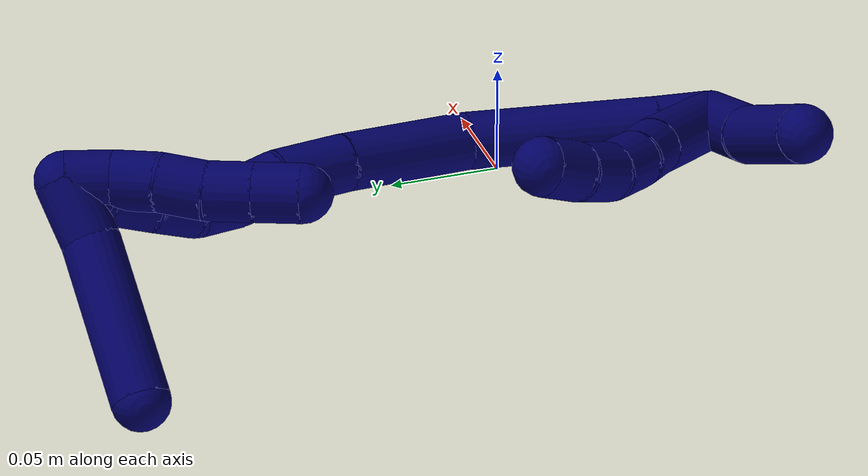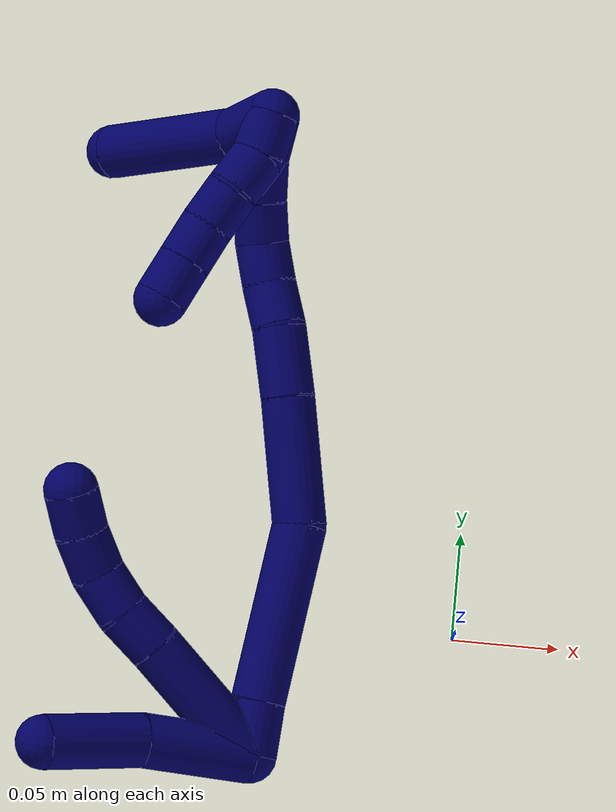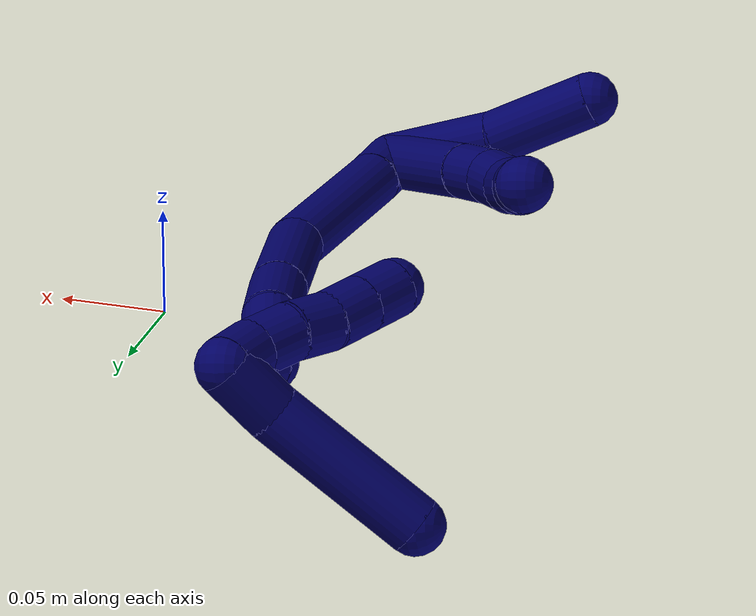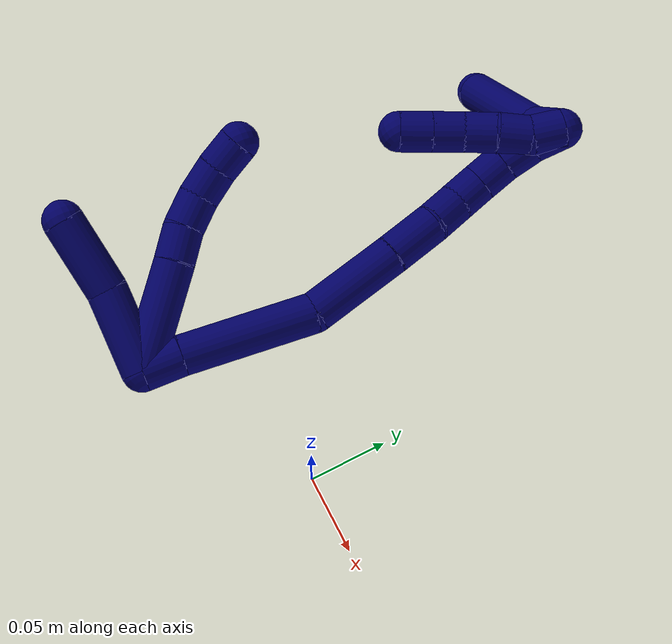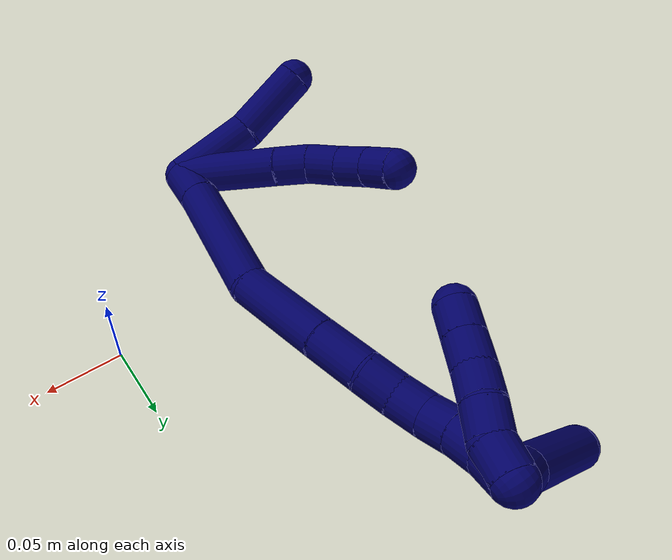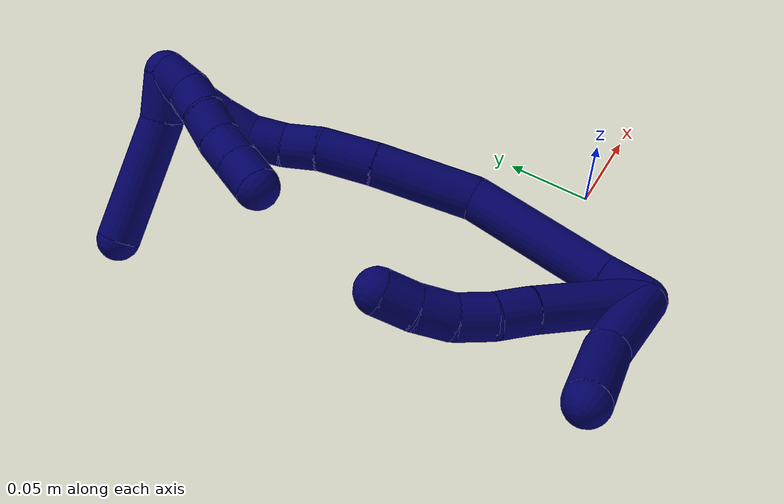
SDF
<sdf version="1.7">
 <world name="default">
  <model name="7">
   <static>0</static>
   <link name="7">
    <collision name="collision-cylinder-e_1_2_8">
     <pose>0.014431 0.017265 0.024663 -0.610749 0.446994 -0.143058</pose>
     <geometry><cylinder><radius>0.0125</radius><length>0.066772</length></cylinder></geometry>
     <surface>
      <friction><ode><mu>1.16</mu><mu2>1.16</mu2><slip1>0</slip1><slip2>0</slip2></ode></friction>
      <contact><ode><kp>1e+06</kp><kd>1</kd><max_vel>0</max_vel><min_depth>0.001</min_depth></ode></contact>
     </surface>
    </collision>
    <visual name="visual-cylinder-e_1_2_8">
     <pose>0.014431 0.017265 0.024663 -0.610749 0.446994 -0.143058</pose>
     <geometry><cylinder><radius>0.0125</radius><length>0.066772</length></cylinder></geometry>
     <material><ambient>0.003922 0 0.403922 1</ambient></material>
    </visual>
    <collision name="collision-cylinder-e_2_8_9">
     <pose>0.032855 0.040107 0.057547 -0.596103 0.382129 -0.118701</pose>
     <geometry><cylinder><radius>0.0125</radius><length>0.021412</length></cylinder></geometry>
     <surface>
      <friction><ode><mu>1.16</mu><mu2>1.16</mu2><slip1>0</slip1><slip2>0</slip2></ode></friction>
      <contact><ode><kp>1e+06</kp><kd>1</kd><max_vel>0</max_vel><min_depth>0.001</min_depth></ode></contact>
     </surface>
    </collision>
    <visual name="visual-cylinder-e_2_8_9">
     <pose>0.032855 0.040107 0.057547 -0.596103 0.382129 -0.118701</pose>
     <geometry><cylinder><radius>0.0125</radius><length>0.021412</length></cylinder></geometry>
     <material><ambient>0.003922 0 0.403922 1</ambient></material>
    </visual>
    <collision name="collision-cylinder-e_3_9_10">
     <pose>0.041117 0.052444 0.072464 -0.790086 0.421823 -0.178067</pose>
     <geometry><cylinder><radius>0.0125</radius><length>0.020857</length></cylinder></geometry>
     <surface>
      <friction><ode><mu>1.16</mu><mu2>1.16</mu2><slip1>0</slip1><slip2>0</slip2></ode></friction>
      <contact><ode><kp>1e+06</kp><kd>1</kd><max_vel>0</max_vel><min_depth>0.001</min_depth></ode></contact>
     </surface>
    </collision>
    <visual name="visual-cylinder-e_3_9_10">
     <pose>0.041117 0.052444 0.072464 -0.790086 0.421823 -0.178067</pose>
     <geometry><cylinder><radius>0.0125</radius><length>0.020857</length></cylinder></geometry>
     <material><ambient>0.003922 0 0.403922 1</ambient></material>
    </visual>
    <collision name="collision-cylinder-e_4_10_11">
     <pose>0.051883 0.06558 0.084175 -0.904351 0.675211 -0.337785</pose>
     <geometry><cylinder><radius>0.0125</radius><length>0.020786</length></cylinder></geometry>
     <surface>
      <friction><ode><mu>1.16</mu><mu2>1.16</mu2><slip1>0</slip1><slip2>0</slip2></ode></friction>
      <contact><ode><kp>1e+06</kp><kd>1</kd><max_vel>0</max_vel><min_depth>0.001</min_depth></ode></contact>
     </surface>
    </collision>
    <visual name="visual-cylinder-e_4_10_11">
     <pose>0.051883 0.06558 0.084175 -0.904351 0.675211 -0.337785</pose>
     <geometry><cylinder><radius>0.0125</radius><length>0.020786</length></cylinder></geometry>
     <material><ambient>0.003922 0 0.403922 1</ambient></material>
    </visual>
    <collision name="collision-cylinder-e_5_11_6">
     <pose>0.065474 0.078148 0.092804 -1.04248 0.780136 -0.463666</pose>
     <geometry><cylinder><radius>0.0125</radius><length>0.020173</length></cylinder></geometry>
     <surface>
      <friction><ode><mu>1.16</mu><mu2>1.16</mu2><slip1>0</slip1><slip2>0</slip2></ode></friction>
      <contact><ode><kp>1e+06</kp><kd>1</kd><max_vel>0</max_vel><min_depth>0.001</min_depth></ode></contact>
     </surface>
    </collision>
    <visual name="visual-cylinder-e_5_11_6">
     <pose>0.065474 0.078148 0.092804 -1.04248 0.780136 -0.463666</pose>
     <geometry><cylinder><radius>0.0125</radius><length>0.020173</length></cylinder></geometry>
     <material><ambient>0.003922 0 0.403922 1</ambient></material>
    </visual>
    <collision name="collision-cylinder-e_1_2_12">
     <pose>0.005147 -0.001965 0.025268 0.077623 0.200346 0.007806</pose>
     <geometry><cylinder><radius>0.0125</radius><length>0.051724</length></cylinder></geometry>
     <surface>
      <friction><ode><mu>1.16</mu><mu2>1.16</mu2><slip1>0</slip1><slip2>0</slip2></ode></friction>
      <contact><ode><kp>1e+06</kp><kd>1</kd><max_vel>0</max_vel><min_depth>0.001</min_depth></ode></contact>
     </surface>
    </collision>
    <visual name="visual-cylinder-e_1_2_12">
     <pose>0.005147 -0.001965 0.025268 0.077623 0.200346 0.007806</pose>
     <geometry><cylinder><radius>0.0125</radius><length>0.051724</length></cylinder></geometry>
     <material><ambient>0.003922 0 0.403922 1</ambient></material>
    </visual>
    <collision name="collision-cylinder-e_2_12_5">
     <pose>0.015774 -0.010408 0.073134 0.279133 0.22906 0.032317</pose>
     <geometry><cylinder><radius>0.0125</radius><length>0.048276</length></cylinder></geometry>
     <surface>
      <friction><ode><mu>1.16</mu><mu2>1.16</mu2><slip1>0</slip1><slip2>0</slip2></ode></friction>
      <contact><ode><kp>1e+06</kp><kd>1</kd><max_vel>0</max_vel><min_depth>0.001</min_depth></ode></contact>
     </surface>
    </collision>
    <visual name="visual-cylinder-e_2_12_5">
     <pose>0.015774 -0.010408 0.073134 0.279133 0.22906 0.032317</pose>
     <geometry><cylinder><radius>0.0125</radius><length>0.048276</length></cylinder></geometry>
     <material><ambient>0.003922 0 0.403922 1</ambient></material>
    </visual>
    <collision name="collision-cylinder-e_1_2_13">
     <pose>0.00555 0.011095 -0.000655 -1.62976 0.463133 -0.490194</pose>
     <geometry><cylinder><radius>0.0125</radius><length>0.024846</length></cylinder></geometry>
     <surface>
      <friction><ode><mu>1.16</mu><mu2>1.16</mu2><slip1>0</slip1><slip2>0</slip2></ode></friction>
      <contact><ode><kp>1e+06</kp><kd>1</kd><max_vel>0</max_vel><min_depth>0.001</min_depth></ode></contact>
     </surface>
    </collision>
    <visual name="visual-cylinder-e_1_2_13">
     <pose>0.00555 0.011095 -0.000655 -1.62976 0.463133 -0.490194</pose>
     <geometry><cylinder><radius>0.0125</radius><length>0.024846</length></cylinder></geometry>
     <material><ambient>0.003922 0 0.403922 1</ambient></material>
    </visual>
    <collision name="collision-cylinder-e_2_13_14">
     <pose>0.029412 0.059089 -0.006266 -1.70431 0.457115 -0.519878</pose>
     <geometry><cylinder><radius>0.0125</radius><length>0.082981</length></cylinder></geometry>
     <surface>
      <friction><ode><mu>1.16</mu><mu2>1.16</mu2><slip1>0</slip1><slip2>0</slip2></ode></friction>
      <contact><ode><kp>1e+06</kp><kd>1</kd><max_vel>0</max_vel><min_depth>0.001</min_depth></ode></contact>
     </surface>
    </collision>
    <visual name="visual-cylinder-e_2_13_14">
     <pose>0.029412 0.059089 -0.006266 -1.70431 0.457115 -0.519878</pose>
     <geometry><cylinder><radius>0.0125</radius><length>0.082981</length></cylinder></geometry>
     <material><ambient>0.003922 0 0.403922 1</ambient></material>
    </visual>
    <collision name="collision-cylinder-e_3_14_15">
     <pose>0.061432 0.121244 -0.005207 -1.33699 0.485791 -0.386524</pose>
     <geometry><cylinder><radius>0.0125</radius><length>0.058716</length></cylinder></geometry>
     <surface>
      <friction><ode><mu>1.16</mu><mu2>1.16</mu2><slip1>0</slip1><slip2>0</slip2></ode></friction>
      <contact><ode><kp>1e+06</kp><kd>1</kd><max_vel>0</max_vel><min_depth>0.001</min_depth></ode></contact>
     </surface>
    </collision>
    <visual name="visual-cylinder-e_3_14_15">
     <pose>0.061432 0.121244 -0.005207 -1.33699 0.485791 -0.386524</pose>
     <geometry><cylinder><radius>0.0125</radius><length>0.058716</length></cylinder></geometry>
     <material><ambient>0.003922 0 0.403922 1</ambient></material>
    </visual>
    <collision name="collision-cylinder-e_4_15_16">
     <pose>0.081954 0.160703 0.004581 -1.31115 0.434141 -0.336019</pose>
     <geometry><cylinder><radius>0.0125</radius><length>0.0324</length></cylinder></geometry>
     <surface>
      <friction><ode><mu>1.16</mu><mu2>1.16</mu2><slip1>0</slip1><slip2>0</slip2></ode></friction>
      <contact><ode><kp>1e+06</kp><kd>1</kd><max_vel>0</max_vel><min_depth>0.001</min_depth></ode></contact>
     </surface>
    </collision>
    <visual name="visual-cylinder-e_4_15_16">
     <pose>0.081954 0.160703 0.004581 -1.31115 0.434141 -0.336019</pose>
     <geometry><cylinder><radius>0.0125</radius><length>0.0324</length></cylinder></geometry>
     <material><ambient>0.003922 0 0.403922 1</ambient></material>
    </visual>
    <collision name="collision-cylinder-e_5_16_17">
     <pose>0.091479 0.184495 0.011492 -1.25442 0.262573 -0.190846</pose>
     <geometry><cylinder><radius>0.0125</radius><length>0.020891</length></cylinder></geometry>
     <surface>
      <friction><ode><mu>1.16</mu><mu2>1.16</mu2><slip1>0</slip1><slip2>0</slip2></ode></friction>
      <contact><ode><kp>1e+06</kp><kd>1</kd><max_vel>0</max_vel><min_depth>0.001</min_depth></ode></contact>
     </surface>
    </collision>
    <visual name="visual-cylinder-e_5_16_17">
     <pose>0.091479 0.184495 0.011492 -1.25442 0.262573 -0.190846</pose>
     <geometry><cylinder><radius>0.0125</radius><length>0.020891</length></cylinder></geometry>
     <material><ambient>0.003922 0 0.403922 1</ambient></material>
    </visual>
    <collision name="collision-cylinder-e_6_17_18">
     <pose>0.098509 0.20268 0.017436 -1.25548 0.445448 -0.325784</pose>
     <geometry><cylinder><radius>0.0125</radius><length>0.020044</length></cylinder></geometry>
     <surface>
      <friction><ode><mu>1.16</mu><mu2>1.16</mu2><slip1>0</slip1><slip2>0</slip2></ode></friction>
      <contact><ode><kp>1e+06</kp><kd>1</kd><max_vel>0</max_vel><min_depth>0.001</min_depth></ode></contact>
     </surface>
    </collision>
    <visual name="visual-cylinder-e_6_17_18">
     <pose>0.098509 0.20268 0.017436 -1.25548 0.445448 -0.325784</pose>
     <geometry><cylinder><radius>0.0125</radius><length>0.020044</length></cylinder></geometry>
     <material><ambient>0.003922 0 0.403922 1</ambient></material>
    </visual>
    <collision name="collision-cylinder-e_7_18_19">
     <pose>0.109926 0.21811 0.022237 -1.28643 0.784099 -0.601036</pose>
     <geometry><cylinder><radius>0.0125</radius><length>0.020105</length></cylinder></geometry>
     <surface>
      <friction><ode><mu>1.16</mu><mu2>1.16</mu2><slip1>0</slip1><slip2>0</slip2></ode></friction>
      <contact><ode><kp>1e+06</kp><kd>1</kd><max_vel>0</max_vel><min_depth>0.001</min_depth></ode></contact>
     </surface>
    </collision>
    <visual name="visual-cylinder-e_7_18_19">
     <pose>0.109926 0.21811 0.022237 -1.28643 0.784099 -0.601036</pose>
     <geometry><cylinder><radius>0.0125</radius><length>0.020105</length></cylinder></geometry>
     <material><ambient>0.003922 0 0.403922 1</ambient></material>
    </visual>
    <collision name="collision-cylinder-e_8_19_20">
     <pose>0.124103 0.231949 0.025158 -1.43969 0.786127 -0.697396</pose>
     <geometry><cylinder><radius>0.0125</radius><length>0.020006</length></cylinder></geometry>
     <surface>
      <friction><ode><mu>1.16</mu><mu2>1.16</mu2><slip1>0</slip1><slip2>0</slip2></ode></friction>
      <contact><ode><kp>1e+06</kp><kd>1</kd><max_vel>0</max_vel><min_depth>0.001</min_depth></ode></contact>
     </surface>
    </collision>
    <visual name="visual-cylinder-e_8_19_20">
     <pose>0.124103 0.231949 0.025158 -1.43969 0.786127 -0.697396</pose>
     <geometry><cylinder><radius>0.0125</radius><length>0.020006</length></cylinder></geometry>
     <material><ambient>0.003922 0 0.403922 1</ambient></material>
    </visual>
    <collision name="collision-cylinder-e_9_20_1">
     <pose>0.138896 0.245256 0.025134 -1.72017 0.880493 -1.00151</pose>
     <geometry><cylinder><radius>0.0125</radius><length>0.02001</length></cylinder></geometry>
     <surface>
      <friction><ode><mu>1.16</mu><mu2>1.16</mu2><slip1>0</slip1><slip2>0</slip2></ode></friction>
      <contact><ode><kp>1e+06</kp><kd>1</kd><max_vel>0</max_vel><min_depth>0.001</min_depth></ode></contact>
     </surface>
    </collision>
    <visual name="visual-cylinder-e_9_20_1">
     <pose>0.138896 0.245256 0.025134 -1.72017 0.880493 -1.00151</pose>
     <geometry><cylinder><radius>0.0125</radius><length>0.02001</length></cylinder></geometry>
     <material><ambient>0.003922 0 0.403922 1</ambient></material>
    </visual>
    <collision name="collision-cylinder-e_1_1_21">
     <pose>0.14199 0.242959 0.026362 1.32285 -0.480346 -0.376738</pose>
     <geometry><cylinder><radius>0.0125</radius><length>0.02</length></cylinder></geometry>
     <surface>
      <friction><ode><mu>1.16</mu><mu2>1.16</mu2><slip1>0</slip1><slip2>0</slip2></ode></friction>
      <contact><ode><kp>1e+06</kp><kd>1</kd><max_vel>0</max_vel><min_depth>0.001</min_depth></ode></contact>
     </surface>
    </collision>
    <visual name="visual-cylinder-e_1_1_21">
     <pose>0.14199 0.242959 0.026362 1.32285 -0.480346 -0.376738</pose>
     <geometry><cylinder><radius>0.0125</radius><length>0.02</length></cylinder></geometry>
     <material><ambient>0.003922 0 0.403922 1</ambient></material>
    </visual>
    <collision name="collision-cylinder-e_2_21_22">
     <pose>0.133717 0.226558 0.033615 0.994098 -0.373868 -0.204495</pose>
     <geometry><cylinder><radius>0.0125</radius><length>0.02</length></cylinder></geometry>
     <surface>
      <friction><ode><mu>1.16</mu><mu2>1.16</mu2><slip1>0</slip1><slip2>0</slip2></ode></friction>
      <contact><ode><kp>1e+06</kp><kd>1</kd><max_vel>0</max_vel><min_depth>0.001</min_depth></ode></contact>
     </surface>
    </collision>
    <visual name="visual-cylinder-e_2_21_22">
     <pose>0.133717 0.226558 0.033615 0.994098 -0.373868 -0.204495</pose>
     <geometry><cylinder><radius>0.0125</radius><length>0.02</length></cylinder></geometry>
     <material><ambient>0.003922 0 0.403922 1</ambient></material>
    </visual>
    <collision name="collision-cylinder-e_3_22_23">
     <pose>0.125026 0.211572 0.043488 0.981919 -0.5281 -0.287095</pose>
     <geometry><cylinder><radius>0.0125</radius><length>0.02</length></cylinder></geometry>
     <surface>
      <friction><ode><mu>1.16</mu><mu2>1.16</mu2><slip1>0</slip1><slip2>0</slip2></ode></friction>
      <contact><ode><kp>1e+06</kp><kd>1</kd><max_vel>0</max_vel><min_depth>0.001</min_depth></ode></contact>
     </surface>
    </collision>
    <visual name="visual-cylinder-e_3_22_23">
     <pose>0.125026 0.211572 0.043488 0.981919 -0.5281 -0.287095</pose>
     <geometry><cylinder><radius>0.0125</radius><length>0.02</length></cylinder></geometry>
     <material><ambient>0.003922 0 0.403922 1</ambient></material>
    </visual>
    <collision name="collision-cylinder-e_4_23_24">
     <pose>0.116031 0.196256 0.052552 1.08763 -0.406742 -0.248095</pose>
     <geometry><cylinder><radius>0.0125</radius><length>0.02</length></cylinder></geometry>
     <surface>
      <friction><ode><mu>1.16</mu><mu2>1.16</mu2><slip1>0</slip1><slip2>0</slip2></ode></friction>
      <contact><ode><kp>1e+06</kp><kd>1</kd><max_vel>0</max_vel><min_depth>0.001</min_depth></ode></contact>
     </surface>
    </collision>
    <visual name="visual-cylinder-e_4_23_24">
     <pose>0.116031 0.196256 0.052552 1.08763 -0.406742 -0.248095</pose>
     <geometry><cylinder><radius>0.0125</radius><length>0.02</length></cylinder></geometry>
     <material><ambient>0.003922 0 0.403922 1</ambient></material>
    </visual>
    <collision name="collision-cylinder-e_5_24_4">
     <pose>0.108115 0.179981 0.061064 1.09022 -0.407057 -0.249008</pose>
     <geometry><cylinder><radius>0.0125</radius><length>0.02</length></cylinder></geometry>
     <surface>
      <friction><ode><mu>1.16</mu><mu2>1.16</mu2><slip1>0</slip1><slip2>0</slip2></ode></friction>
      <contact><ode><kp>1e+06</kp><kd>1</kd><max_vel>0</max_vel><min_depth>0.001</min_depth></ode></contact>
     </surface>
    </collision>
    <visual name="visual-cylinder-e_5_24_4">
     <pose>0.108115 0.179981 0.061064 1.09022 -0.407057 -0.249008</pose>
     <geometry><cylinder><radius>0.0125</radius><length>0.02</length></cylinder></geometry>
     <material><ambient>0.003922 0 0.403922 1</ambient></material>
    </visual>
    <collision name="collision-cylinder-e_1_1_25">
     <pose>0.135108 0.253432 0.031397 -0.254485 -0.995977 0.13889</pose>
     <geometry><cylinder><radius>0.0125</radius><length>0.027412</length></cylinder></geometry>
     <surface>
      <friction><ode><mu>1.16</mu><mu2>1.16</mu2><slip1>0</slip1><slip2>0</slip2></ode></friction>
      <contact><ode><kp>1e+06</kp><kd>1</kd><max_vel>0</max_vel><min_depth>0.001</min_depth></ode></contact>
     </surface>
    </collision>
    <visual name="visual-cylinder-e_1_1_25">
     <pose>0.135108 0.253432 0.031397 -0.254485 -0.995977 0.13889</pose>
     <geometry><cylinder><radius>0.0125</radius><length>0.027412</length></cylinder></geometry>
     <material><ambient>0.003922 0 0.403922 1</ambient></material>
    </visual>
    <collision name="collision-cylinder-e_2_25_3">
     <pose>0.099367 0.263877 0.064229 -0.322784 -0.731265 0.1245</pose>
     <geometry><cylinder><radius>0.0125</radius><length>0.072588</length></cylinder></geometry>
     <surface>
      <friction><ode><mu>1.16</mu><mu2>1.16</mu2><slip1>0</slip1><slip2>0</slip2></ode></friction>
      <contact><ode><kp>1e+06</kp><kd>1</kd><max_vel>0</max_vel><min_depth>0.001</min_depth></ode></contact>
     </surface>
    </collision>
    <visual name="visual-cylinder-e_2_25_3">
     <pose>0.099367 0.263877 0.064229 -0.322784 -0.731265 0.1245</pose>
     <geometry><cylinder><radius>0.0125</radius><length>0.072588</length></cylinder></geometry>
     <material><ambient>0.003922 0 0.403922 1</ambient></material>
    </visual>
    <collision name="collision-sphere-3">
     <pose>0.075129 0.272447 0.089848 0 -0 0</pose>
     <geometry><sphere><radius>0.0125</radius></sphere></geometry>
     <surface>
      <friction><ode><mu>1.16</mu><mu2>1.16</mu2><slip1>0</slip1><slip2>0</slip2></ode></friction>
      <contact><ode><kp>1e+06</kp><kd>1</kd><max_vel>0</max_vel><min_depth>0.001</min_depth></ode></contact>
     </surface>
    </collision>
    <visual name="visual-sphere-3">
     <pose>0.075129 0.272447 0.089848 0 -0 0</pose>
     <geometry><sphere><radius>0.0125</radius></sphere></geometry>
     <material><ambient>0.003922 0 0.403922 1</ambient></material>
    </visual>
    <collision name="collision-sphere-25">
     <pose>0.123605 0.255308 0.038609 0 -0 0</pose>
     <geometry><sphere><radius>0.0125</radius></sphere></geometry>
     <surface>
      <friction><ode><mu>1.16</mu><mu2>1.16</mu2><slip1>0</slip1><slip2>0</slip2></ode></friction>
      <contact><ode><kp>1e+06</kp><kd>1</kd><max_vel>0</max_vel><min_depth>0.001</min_depth></ode></contact>
     </surface>
    </collision>
    <visual name="visual-sphere-25">
     <pose>0.123605 0.255308 0.038609 0 -0 0</pose>
     <geometry><sphere><radius>0.0125</radius></sphere></geometry>
     <material><ambient>0.003922 0 0.403922 1</ambient></material>
    </visual>
    <collision name="collision-sphere-4">
     <pose>0.104156 0.171838 0.06531 0 -0 0</pose>
     <geometry><sphere><radius>0.0125</radius></sphere></geometry>
     <surface>
      <friction><ode><mu>1.16</mu><mu2>1.16</mu2><slip1>0</slip1><slip2>0</slip2></ode></friction>
      <contact><ode><kp>1e+06</kp><kd>1</kd><max_vel>0</max_vel><min_depth>0.001</min_depth></ode></contact>
     </surface>
    </collision>
    <visual name="visual-sphere-4">
     <pose>0.104156 0.171838 0.06531 0 -0 0</pose>
     <geometry><sphere><radius>0.0125</radius></sphere></geometry>
     <material><ambient>0.003922 0 0.403922 1</ambient></material>
    </visual>
    <collision name="collision-sphere-24">
     <pose>0.112075 0.188124 0.056819 0 -0 0</pose>
     <geometry><sphere><radius>0.0125</radius></sphere></geometry>
     <surface>
      <friction><ode><mu>1.16</mu><mu2>1.16</mu2><slip1>0</slip1><slip2>0</slip2></ode></friction>
      <contact><ode><kp>1e+06</kp><kd>1</kd><max_vel>0</max_vel><min_depth>0.001</min_depth></ode></contact>
     </surface>
    </collision>
    <visual name="visual-sphere-24">
     <pose>0.112075 0.188124 0.056819 0 -0 0</pose>
     <geometry><sphere><radius>0.0125</radius></sphere></geometry>
     <material><ambient>0.003922 0 0.403922 1</ambient></material>
    </visual>
    <collision name="collision-sphere-23">
     <pose>0.119987 0.204389 0.048286 0 -0 0</pose>
     <geometry><sphere><radius>0.0125</radius></sphere></geometry>
     <surface>
      <friction><ode><mu>1.16</mu><mu2>1.16</mu2><slip1>0</slip1><slip2>0</slip2></ode></friction>
      <contact><ode><kp>1e+06</kp><kd>1</kd><max_vel>0</max_vel><min_depth>0.001</min_depth></ode></contact>
     </surface>
    </collision>
    <visual name="visual-sphere-23">
     <pose>0.119987 0.204389 0.048286 0 -0 0</pose>
     <geometry><sphere><radius>0.0125</radius></sphere></geometry>
     <material><ambient>0.003922 0 0.403922 1</ambient></material>
    </visual>
    <collision name="collision-sphere-22">
     <pose>0.130065 0.218755 0.03869 0 -0 0</pose>
     <geometry><sphere><radius>0.0125</radius></sphere></geometry>
     <surface>
      <friction><ode><mu>1.16</mu><mu2>1.16</mu2><slip1>0</slip1><slip2>0</slip2></ode></friction>
      <contact><ode><kp>1e+06</kp><kd>1</kd><max_vel>0</max_vel><min_depth>0.001</min_depth></ode></contact>
     </surface>
    </collision>
    <visual name="visual-sphere-22">
     <pose>0.130065 0.218755 0.03869 0 -0 0</pose>
     <geometry><sphere><radius>0.0125</radius></sphere></geometry>
     <material><ambient>0.003922 0 0.403922 1</ambient></material>
    </visual>
    <collision name="collision-sphere-21">
     <pose>0.137369 0.234362 0.028539 0 -0 0</pose>
     <geometry><sphere><radius>0.0125</radius></sphere></geometry>
     <surface>
      <friction><ode><mu>1.16</mu><mu2>1.16</mu2><slip1>0</slip1><slip2>0</slip2></ode></friction>
      <contact><ode><kp>1e+06</kp><kd>1</kd><max_vel>0</max_vel><min_depth>0.001</min_depth></ode></contact>
     </surface>
    </collision>
    <visual name="visual-sphere-21">
     <pose>0.137369 0.234362 0.028539 0 -0 0</pose>
     <geometry><sphere><radius>0.0125</radius></sphere></geometry>
     <material><ambient>0.003922 0 0.403922 1</ambient></material>
    </visual>
    <collision name="collision-sphere-1">
     <pose>0.146611 0.251556 0.024186 0 -0 0</pose>
     <geometry><sphere><radius>0.0125</radius></sphere></geometry>
     <surface>
      <friction><ode><mu>1.16</mu><mu2>1.16</mu2><slip1>0</slip1><slip2>0</slip2></ode></friction>
      <contact><ode><kp>1e+06</kp><kd>1</kd><max_vel>0</max_vel><min_depth>0.001</min_depth></ode></contact>
     </surface>
    </collision>
    <visual name="visual-sphere-1">
     <pose>0.146611 0.251556 0.024186 0 -0 0</pose>
     <geometry><sphere><radius>0.0125</radius></sphere></geometry>
     <material><ambient>0.003922 0 0.403922 1</ambient></material>
    </visual>
    <collision name="collision-sphere-6">
     <pose>0.072568 0.08434 0.096418 0 -0 0</pose>
     <geometry><sphere><radius>0.0125</radius></sphere></geometry>
     <surface>
      <friction><ode><mu>1.16</mu><mu2>1.16</mu2><slip1>0</slip1><slip2>0</slip2></ode></friction>
      <contact><ode><kp>1e+06</kp><kd>1</kd><max_vel>0</max_vel><min_depth>0.001</min_depth></ode></contact>
     </surface>
    </collision>
    <visual name="visual-sphere-6">
     <pose>0.072568 0.08434 0.096418 0 -0 0</pose>
     <geometry><sphere><radius>0.0125</radius></sphere></geometry>
     <material><ambient>0.003922 0 0.403922 1</ambient></material>
    </visual>
    <collision name="collision-sphere-11">
     <pose>0.058379 0.071956 0.08919 0 -0 0</pose>
     <geometry><sphere><radius>0.0125</radius></sphere></geometry>
     <surface>
      <friction><ode><mu>1.16</mu><mu2>1.16</mu2><slip1>0</slip1><slip2>0</slip2></ode></friction>
      <contact><ode><kp>1e+06</kp><kd>1</kd><max_vel>0</max_vel><min_depth>0.001</min_depth></ode></contact>
     </surface>
    </collision>
    <visual name="visual-sphere-11">
     <pose>0.058379 0.071956 0.08919 0 -0 0</pose>
     <geometry><sphere><radius>0.0125</radius></sphere></geometry>
     <material><ambient>0.003922 0 0.403922 1</ambient></material>
    </visual>
    <collision name="collision-sphere-10">
     <pose>0.045387 0.059203 0.07916 0 -0 0</pose>
     <geometry><sphere><radius>0.0125</radius></sphere></geometry>
     <surface>
      <friction><ode><mu>1.16</mu><mu2>1.16</mu2><slip1>0</slip1><slip2>0</slip2></ode></friction>
      <contact><ode><kp>1e+06</kp><kd>1</kd><max_vel>0</max_vel><min_depth>0.001</min_depth></ode></contact>
     </surface>
    </collision>
    <visual name="visual-sphere-10">
     <pose>0.045387 0.059203 0.07916 0 -0 0</pose>
     <geometry><sphere><radius>0.0125</radius></sphere></geometry>
     <material><ambient>0.003922 0 0.403922 1</ambient></material>
    </visual>
    <collision name="collision-sphere-9">
     <pose>0.036847 0.045684 0.065768 0 -0 0</pose>
     <geometry><sphere><radius>0.0125</radius></sphere></geometry>
     <surface>
      <friction><ode><mu>1.16</mu><mu2>1.16</mu2><slip1>0</slip1><slip2>0</slip2></ode></friction>
      <contact><ode><kp>1e+06</kp><kd>1</kd><max_vel>0</max_vel><min_depth>0.001</min_depth></ode></contact>
     </surface>
    </collision>
    <visual name="visual-sphere-9">
     <pose>0.036847 0.045684 0.065768 0 -0 0</pose>
     <geometry><sphere><radius>0.0125</radius></sphere></geometry>
     <material><ambient>0.003922 0 0.403922 1</ambient></material>
    </visual>
    <collision name="collision-sphere-2">
     <geometry><sphere><radius>0.0125</radius></sphere></geometry>
     <surface>
      <friction><ode><mu>1.16</mu><mu2>1.16</mu2><slip1>0</slip1><slip2>0</slip2></ode></friction>
      <contact><ode><kp>1e+06</kp><kd>1</kd><max_vel>0</max_vel><min_depth>0.001</min_depth></ode></contact>
     </surface>
    </collision>
    <visual name="visual-sphere-2">
     <geometry><sphere><radius>0.0125</radius></sphere></geometry>
     <material><ambient>0.003922 0 0.403922 1</ambient></material>
    </visual>
    <collision name="collision-sphere-19">
     <pose>0.117025 0.224941 0.024234 0 -0 0</pose>
     <geometry><sphere><radius>0.0125</radius></sphere></geometry>
     <surface>
      <friction><ode><mu>1.16</mu><mu2>1.16</mu2><slip1>0</slip1><slip2>0</slip2></ode></friction>
      <contact><ode><kp>1e+06</kp><kd>1</kd><max_vel>0</max_vel><min_depth>0.001</min_depth></ode></contact>
     </surface>
    </collision>
    <visual name="visual-sphere-19">
     <pose>0.117025 0.224941 0.024234 0 -0 0</pose>
     <geometry><sphere><radius>0.0125</radius></sphere></geometry>
     <material><ambient>0.003922 0 0.403922 1</ambient></material>
    </visual>
    <collision name="collision-sphere-8">
     <pose>0.028862 0.03453 0.049326 0 -0 0</pose>
     <geometry><sphere><radius>0.0125</radius></sphere></geometry>
     <surface>
      <friction><ode><mu>1.16</mu><mu2>1.16</mu2><slip1>0</slip1><slip2>0</slip2></ode></friction>
      <contact><ode><kp>1e+06</kp><kd>1</kd><max_vel>0</max_vel><min_depth>0.001</min_depth></ode></contact>
     </surface>
    </collision>
    <visual name="visual-sphere-8">
     <pose>0.028862 0.03453 0.049326 0 -0 0</pose>
     <geometry><sphere><radius>0.0125</radius></sphere></geometry>
     <material><ambient>0.003922 0 0.403922 1</ambient></material>
    </visual>
    <collision name="collision-sphere-12">
     <pose>0.010293 -0.003931 0.050537 0 -0 0</pose>
     <geometry><sphere><radius>0.0125</radius></sphere></geometry>
     <surface>
      <friction><ode><mu>1.16</mu><mu2>1.16</mu2><slip1>0</slip1><slip2>0</slip2></ode></friction>
      <contact><ode><kp>1e+06</kp><kd>1</kd><max_vel>0</max_vel><min_depth>0.001</min_depth></ode></contact>
     </surface>
    </collision>
    <visual name="visual-sphere-12">
     <pose>0.010293 -0.003931 0.050537 0 -0 0</pose>
     <geometry><sphere><radius>0.0125</radius></sphere></geometry>
     <material><ambient>0.003922 0 0.403922 1</ambient></material>
    </visual>
    <collision name="collision-sphere-5">
     <pose>0.021255 -0.016884 0.095732 0 -0 0</pose>
     <geometry><sphere><radius>0.0125</radius></sphere></geometry>
     <surface>
      <friction><ode><mu>1.16</mu><mu2>1.16</mu2><slip1>0</slip1><slip2>0</slip2></ode></friction>
      <contact><ode><kp>1e+06</kp><kd>1</kd><max_vel>0</max_vel><min_depth>0.001</min_depth></ode></contact>
     </surface>
    </collision>
    <visual name="visual-sphere-5">
     <pose>0.021255 -0.016884 0.095732 0 -0 0</pose>
     <geometry><sphere><radius>0.0125</radius></sphere></geometry>
     <material><ambient>0.003922 0 0.403922 1</ambient></material>
    </visual>
    <collision name="collision-sphere-13">
     <pose>0.0111 0.02219 -0.00131 0 -0 0</pose>
     <geometry><sphere><radius>0.0125</radius></sphere></geometry>
     <surface>
      <friction><ode><mu>1.16</mu><mu2>1.16</mu2><slip1>0</slip1><slip2>0</slip2></ode></friction>
      <contact><ode><kp>1e+06</kp><kd>1</kd><max_vel>0</max_vel><min_depth>0.001</min_depth></ode></contact>
     </surface>
    </collision>
    <visual name="visual-sphere-13">
     <pose>0.0111 0.02219 -0.00131 0 -0 0</pose>
     <geometry><sphere><radius>0.0125</radius></sphere></geometry>
     <material><ambient>0.003922 0 0.403922 1</ambient></material>
    </visual>
    <collision name="collision-sphere-14">
     <pose>0.047725 0.095989 -0.011222 0 -0 0</pose>
     <geometry><sphere><radius>0.0125</radius></sphere></geometry>
     <surface>
      <friction><ode><mu>1.16</mu><mu2>1.16</mu2><slip1>0</slip1><slip2>0</slip2></ode></friction>
      <contact><ode><kp>1e+06</kp><kd>1</kd><max_vel>0</max_vel><min_depth>0.001</min_depth></ode></contact>
     </surface>
    </collision>
    <visual name="visual-sphere-14">
     <pose>0.047725 0.095989 -0.011222 0 -0 0</pose>
     <geometry><sphere><radius>0.0125</radius></sphere></geometry>
     <material><ambient>0.003922 0 0.403922 1</ambient></material>
    </visual>
    <collision name="collision-sphere-15">
     <pose>0.07514 0.146499 0.000807 0 -0 0</pose>
     <geometry><sphere><radius>0.0125</radius></sphere></geometry>
     <surface>
      <friction><ode><mu>1.16</mu><mu2>1.16</mu2><slip1>0</slip1><slip2>0</slip2></ode></friction>
      <contact><ode><kp>1e+06</kp><kd>1</kd><max_vel>0</max_vel><min_depth>0.001</min_depth></ode></contact>
     </surface>
    </collision>
    <visual name="visual-sphere-15">
     <pose>0.07514 0.146499 0.000807 0 -0 0</pose>
     <geometry><sphere><radius>0.0125</radius></sphere></geometry>
     <material><ambient>0.003922 0 0.403922 1</ambient></material>
    </visual>
    <collision name="collision-sphere-16">
     <pose>0.088768 0.174908 0.008354 0 -0 0</pose>
     <geometry><sphere><radius>0.0125</radius></sphere></geometry>
     <surface>
      <friction><ode><mu>1.16</mu><mu2>1.16</mu2><slip1>0</slip1><slip2>0</slip2></ode></friction>
      <contact><ode><kp>1e+06</kp><kd>1</kd><max_vel>0</max_vel><min_depth>0.001</min_depth></ode></contact>
     </surface>
    </collision>
    <visual name="visual-sphere-16">
     <pose>0.088768 0.174908 0.008354 0 -0 0</pose>
     <geometry><sphere><radius>0.0125</radius></sphere></geometry>
     <material><ambient>0.003922 0 0.403922 1</ambient></material>
    </visual>
    <collision name="collision-sphere-17">
     <pose>0.094191 0.194082 0.014631 0 -0 0</pose>
     <geometry><sphere><radius>0.0125</radius></sphere></geometry>
     <surface>
      <friction><ode><mu>1.16</mu><mu2>1.16</mu2><slip1>0</slip1><slip2>0</slip2></ode></friction>
      <contact><ode><kp>1e+06</kp><kd>1</kd><max_vel>0</max_vel><min_depth>0.001</min_depth></ode></contact>
     </surface>
    </collision>
    <visual name="visual-sphere-17">
     <pose>0.094191 0.194082 0.014631 0 -0 0</pose>
     <geometry><sphere><radius>0.0125</radius></sphere></geometry>
     <material><ambient>0.003922 0 0.403922 1</ambient></material>
    </visual>
    <collision name="collision-sphere-18">
     <pose>0.102827 0.211278 0.02024 0 -0 0</pose>
     <geometry><sphere><radius>0.0125</radius></sphere></geometry>
     <surface>
      <friction><ode><mu>1.16</mu><mu2>1.16</mu2><slip1>0</slip1><slip2>0</slip2></ode></friction>
      <contact><ode><kp>1e+06</kp><kd>1</kd><max_vel>0</max_vel><min_depth>0.001</min_depth></ode></contact>
     </surface>
    </collision>
    <visual name="visual-sphere-18">
     <pose>0.102827 0.211278 0.02024 0 -0 0</pose>
     <geometry><sphere><radius>0.0125</radius></sphere></geometry>
     <material><ambient>0.003922 0 0.403922 1</ambient></material>
    </visual>
    <collision name="collision-sphere-20">
     <pose>0.131182 0.238956 0.026082 0 -0 0</pose>
     <geometry><sphere><radius>0.0125</radius></sphere></geometry>
     <surface>
      <friction><ode><mu>1.16</mu><mu2>1.16</mu2><slip1>0</slip1><slip2>0</slip2></ode></friction>
      <contact><ode><kp>1e+06</kp><kd>1</kd><max_vel>0</max_vel><min_depth>0.001</min_depth></ode></contact>
     </surface>
    </collision>
    <visual name="visual-sphere-20">
     <pose>0.131182 0.238956 0.026082 0 -0 0</pose>
     <geometry><sphere><radius>0.0125</radius></sphere></geometry>
     <material><ambient>0.003922 0 0.403922 1</ambient></material>
    </visual>
    <inertial>
     <pose>0.066086 0.122725 0.032085 0 -0 0</pose>
     <mass>0.75</mass>
     <inertia>
      <ixx>0.000126</ixx>
      <ixy>0</ixy>
      <ixz>0</ixz>
      <iyy>9.4e-05</iyy>
      <iyz>0</iyz>
      <izz>-9.4e-05</izz>
     </inertia>
    </inertial>
   </link>
   <pose>-0.088885 -0.066492 0.059429 -1.26702 -1.11043 1.27857</pose>
  </model>
 </world>
</sdf>
